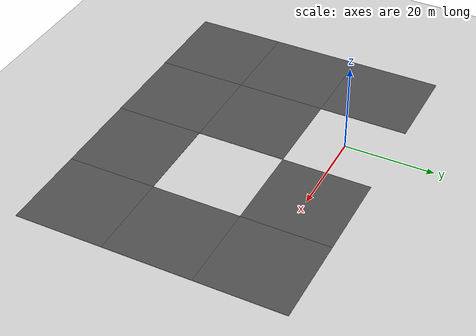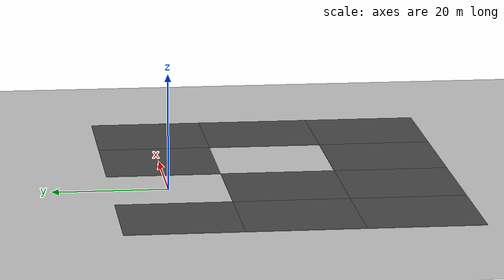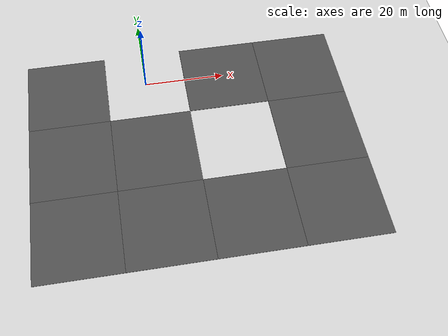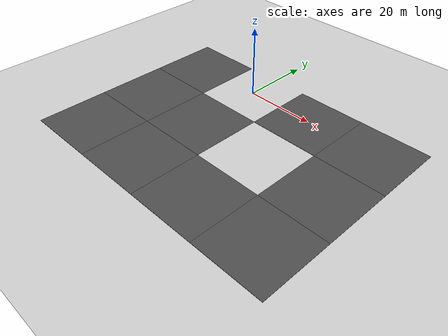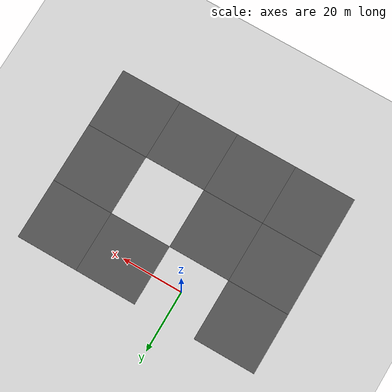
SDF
<sdf version='1.5'>
  <world name='timpa-world'>
    <physics name='default_physics' default='0' type='ode'>
      <max_step_size>0.001</max_step_size>
      <real_time_factor>1</real_time_factor>
      <real_time_update_rate>1000</real_time_update_rate>
      <gravity>0 0 -9.8</gravity>
      <magnetic_field>6e-06 2.3e-05 -4.2e-05</magnetic_field>
    </physics>
    <spherical_coordinates>
      <surface_model>EARTH_WGS84</surface_model>
      <latitude_deg>32.2653</latitude_deg>
      <longitude_deg>-111.274</longitude_deg>
      <elevation>5.8</elevation>
      <heading_deg>5.458</heading_deg>
    </spherical_coordinates>
    <light name='sun' type='directional'>
      <cast_shadows>1</cast_shadows>
      <pose frame=''>0 0 10 0 -0 0</pose>
      <diffuse>0.8 0.8 0.8 1</diffuse>
      <specular>0.2 0.2 0.2 1</specular>
      <attenuation>
        <range>1000</range>
        <constant>0.9</constant>
        <linear>0.01</linear>
        <quadratic>0.001</quadratic>
      </attenuation>
      <direction>-0.5 0.1 -0.9</direction>
    </light>
    <model name='ground_plane'>
      <static>1</static>
      <link name='link'>
        <collision name='collision'>
          <geometry>
            <plane>
              <normal>0 0 1</normal>
              <size>100 100</size>
            </plane>
          </geometry>
          <surface>
            <friction>
              <ode>
                <mu>100</mu>
                <mu2>50</mu2>
              </ode>
            </friction>
            <contact>
              <ode/>
            </contact>
            <bounce/>
          </surface>
          <max_contacts>10</max_contacts>
        </collision>
        <visual name='visual'>
          <cast_shadows>0</cast_shadows>
          <geometry>
            <plane>
              <normal>0 0 1</normal>
              <size>100 100</size>
            </plane>
          </geometry>
          <material>
            <script>
              <uri>file://media/materials/scripts/gazebo.material</uri>
              <name>Gazebo/Grey</name>
            </script>
          </material>
        </visual>
        <self_collide>0</self_collide>
        <kinematic>0</kinematic>
        <gravity>1</gravity>
      </link>
    </model>
    <gui fullscreen='0'>
      <camera name='user_camera'>
        <pose frame=''>-40.392 -103.217 292.591 0 1.23906 1.6529</pose>
        <view_controller>orbit</view_controller>
        <projection_type>perspective</projection_type>
      </camera>
    </gui>
    <scene>
      <ambient>0.4 0.4 0.4 1</ambient>
      <background>0.7 0.7 0.7 1</background>
      <shadows>1</shadows>
    </scene>
    <model name='asphalt_plane_0'>
      <static>1</static>
      <link name='link'>
        <collision name='collision'>
          <geometry>
            <box>
              <size>20 20 0.1</size>
            </box>
          </geometry>
          <max_contacts>10</max_contacts>
          <surface>
            <contact>
              <ode/>
            </contact>
            <bounce/>
            <friction>
              <ode/>
            </friction>
          </surface>
        </collision>
        <visual name='visual'>
          <cast_shadows>0</cast_shadows>
          <geometry>
            <box>
              <size>20 20 0.1</size>
            </box>
          </geometry>
          <material>
            <script>
              <uri>model://asphalt_plane/materials/scripts</uri>
              <uri>model://asphalt_plane/materials/textures</uri>
              <name>vrc/asphalt</name>
            </script>
          </material>
        </visual>
        <self_collide>0</self_collide>
        <kinematic>0</kinematic>
        <gravity>1</gravity>
      </link>
      <pose frame=''>0 -20 0 0 -0 0</pose>
    </model>
    <model name='asphalt_plane_0_0'>
      <static>1</static>
      <link name='link'>
        <collision name='collision'>
          <geometry>
            <box>
              <size>20 20 0.1</size>
            </box>
          </geometry>
          <max_contacts>10</max_contacts>
          <surface>
            <contact>
              <ode/>
            </contact>
            <bounce/>
            <friction>
              <ode/>
            </friction>
          </surface>
        </collision>
        <visual name='visual'>
          <cast_shadows>0</cast_shadows>
          <geometry>
            <box>
              <size>20 20 0.1</size>
            </box>
          </geometry>
          <material>
            <script>
              <uri>model://asphalt_plane/materials/scripts</uri>
              <uri>model://asphalt_plane/materials/textures</uri>
              <name>vrc/asphalt</name>
            </script>
          </material>
        </visual>
        <self_collide>0</self_collide>
        <kinematic>0</kinematic>
        <gravity>1</gravity>
      </link>
      <pose frame=''>20 0 0 0 -0 0</pose>
    </model>
    <model name='asphalt_plane_2'>
      <static>1</static>
      <link name='link'>
        <collision name='collision'>
          <geometry>
            <box>
              <size>20 20 0.1</size>
            </box>
          </geometry>
          <max_contacts>10</max_contacts>
          <surface>
            <contact>
              <ode/>
            </contact>
            <bounce/>
            <friction>
              <ode/>
            </friction>
          </surface>
        </collision>
        <visual name='visual'>
          <cast_shadows>0</cast_shadows>
          <geometry>
            <box>
              <size>20 20 0.1</size>
            </box>
          </geometry>
          <material>
            <script>
              <uri>model://asphalt_plane/materials/scripts</uri>
              <uri>model://asphalt_plane/materials/textures</uri>
              <name>vrc/asphalt</name>
            </script>
          </material>
        </visual>
        <self_collide>0</self_collide>
        <kinematic>0</kinematic>
        <gravity>1</gravity>
      </link>
      <pose frame=''>40 0 0 0 -0 0</pose>
    </model>
    <model name='asphalt_plane_3'>
      <static>1</static>
      <link name='link'>
        <collision name='collision'>
          <geometry>
            <box>
              <size>20 20 0.1</size>
            </box>
          </geometry>
          <max_contacts>10</max_contacts>
          <surface>
            <contact>
              <ode/>
            </contact>
            <bounce/>
            <friction>
              <ode/>
            </friction>
          </surface>
        </collision>
        <visual name='visual'>
          <cast_shadows>0</cast_shadows>
          <geometry>
            <box>
              <size>20 20 0.1</size>
            </box>
          </geometry>
          <material>
            <script>
              <uri>model://asphalt_plane/materials/scripts</uri>
              <uri>model://asphalt_plane/materials/textures</uri>
              <name>vrc/asphalt</name>
            </script>
          </material>
        </visual>
        <self_collide>0</self_collide>
        <kinematic>0</kinematic>
        <gravity>1</gravity>
      </link>
      <pose frame=''>40 -20 0 0 -0 0</pose>
    </model>
    <model name='asphalt_plane_4'>
      <static>1</static>
      <link name='link'>
        <collision name='collision'>
          <geometry>
            <box>
              <size>20 20 0.1</size>
            </box>
          </geometry>
          <max_contacts>10</max_contacts>
          <surface>
            <contact>
              <ode/>
            </contact>
            <bounce/>
            <friction>
              <ode/>
            </friction>
          </surface>
        </collision>
        <visual name='visual'>
          <cast_shadows>0</cast_shadows>
          <geometry>
            <box>
              <size>20 20 0.1</size>
            </box>
          </geometry>
          <material>
            <script>
              <uri>model://asphalt_plane/materials/scripts</uri>
              <uri>model://asphalt_plane/materials/textures</uri>
              <name>vrc/asphalt</name>
            </script>
          </material>
        </visual>
        <self_collide>0</self_collide>
        <kinematic>0</kinematic>
        <gravity>1</gravity>
      </link>
      <pose frame=''>40 -40 0 0 -0 0</pose>
    </model>
    <model name='asphalt_plane_5'>
      <static>1</static>
      <link name='link'>
        <collision name='collision'>
          <geometry>
            <box>
              <size>20 20 0.1</size>
            </box>
          </geometry>
          <max_contacts>10</max_contacts>
          <surface>
            <contact>
              <ode/>
            </contact>
            <bounce/>
            <friction>
              <ode/>
            </friction>
          </surface>
        </collision>
        <visual name='visual'>
          <cast_shadows>0</cast_shadows>
          <geometry>
            <box>
              <size>20 20 0.1</size>
            </box>
          </geometry>
          <material>
            <script>
              <uri>model://asphalt_plane/materials/scripts</uri>
              <uri>model://asphalt_plane/materials/textures</uri>
              <name>vrc/asphalt</name>
            </script>
          </material>
        </visual>
        <self_collide>0</self_collide>
        <kinematic>0</kinematic>
        <gravity>1</gravity>
      </link>
      <pose frame=''>20 -40 0 0 -0 0</pose>
    </model>
    <model name='asphalt_plane_6'>
      <static>1</static>
      <link name='link'>
        <collision name='collision'>
          <geometry>
            <box>
              <size>20 20 0.1</size>
            </box>
          </geometry>
          <max_contacts>10</max_contacts>
          <surface>
            <contact>
              <ode/>
            </contact>
            <bounce/>
            <friction>
              <ode/>
            </friction>
          </surface>
        </collision>
        <visual name='visual'>
          <cast_shadows>0</cast_shadows>
          <geometry>
            <box>
              <size>20 20 0.1</size>
            </box>
          </geometry>
          <material>
            <script>
              <uri>model://asphalt_plane/materials/scripts</uri>
              <uri>model://asphalt_plane/materials/textures</uri>
              <name>vrc/asphalt</name>
            </script>
          </material>
        </visual>
        <self_collide>0</self_collide>
        <kinematic>0</kinematic>
        <gravity>1</gravity>
      </link>
      <pose frame=''>0 -40 0 0 -0 0</pose>
    </model>
    <model name='asphalt_plane_7'>
      <static>1</static>
      <link name='link'>
        <collision name='collision'>
          <geometry>
            <box>
              <size>20 20 0.1</size>
            </box>
          </geometry>
          <max_contacts>10</max_contacts>
          <surface>
            <contact>
              <ode/>
            </contact>
            <bounce/>
            <friction>
              <ode/>
            </friction>
          </surface>
        </collision>
        <visual name='visual'>
          <cast_shadows>0</cast_shadows>
          <geometry>
            <box>
              <size>20 20 0.1</size>
            </box>
          </geometry>
          <material>
            <script>
              <uri>model://asphalt_plane/materials/scripts</uri>
              <uri>model://asphalt_plane/materials/textures</uri>
              <name>vrc/asphalt</name>
            </script>
          </material>
        </visual>
        <self_collide>0</self_collide>
        <kinematic>0</kinematic>
        <gravity>1</gravity>
      </link>
      <pose frame=''>-20 -40 0 0 -0 0</pose>
    </model>
    <model name='asphalt_plane_8'>
      <static>1</static>
      <link name='link'>
        <collision name='collision'>
          <geometry>
            <box>
              <size>20 20 0.1</size>
            </box>
          </geometry>
          <max_contacts>10</max_contacts>
          <surface>
            <contact>
              <ode/>
            </contact>
            <bounce/>
            <friction>
              <ode/>
            </friction>
          </surface>
        </collision>
        <visual name='visual'>
          <cast_shadows>0</cast_shadows>
          <geometry>
            <box>
              <size>20 20 0.1</size>
            </box>
          </geometry>
          <material>
            <script>
              <uri>model://asphalt_plane/materials/scripts</uri>
              <uri>model://asphalt_plane/materials/textures</uri>
              <name>vrc/asphalt</name>
            </script>
          </material>
        </visual>
        <self_collide>0</self_collide>
        <kinematic>0</kinematic>
        <gravity>1</gravity>
      </link>
      <pose frame=''>-20 -20 0 0 -0 0</pose>
    </model>
    <model name='asphalt_plane_9'>
      <static>1</static>
      <link name='link'>
        <collision name='collision'>
          <geometry>
            <box>
              <size>20 20 0.1</size>
            </box>
          </geometry>
          <max_contacts>10</max_contacts>
          <surface>
            <contact>
              <ode/>
            </contact>
            <bounce/>
            <friction>
              <ode/>
            </friction>
          </surface>
        </collision>
        <visual name='visual'>
          <cast_shadows>0</cast_shadows>
          <geometry>
            <box>
              <size>20 20 0.1</size>
            </box>
          </geometry>
          <material>
            <script>
              <uri>model://asphalt_plane/materials/scripts</uri>
              <uri>model://asphalt_plane/materials/textures</uri>
              <name>vrc/asphalt</name>
            </script>
          </material>
        </visual>
        <self_collide>0</self_collide>
        <kinematic>0</kinematic>
        <gravity>1</gravity>
      </link>
      <pose frame=''>-20 0 0 0 -0 0</pose>
    </model>
   </world>
</sdf>
